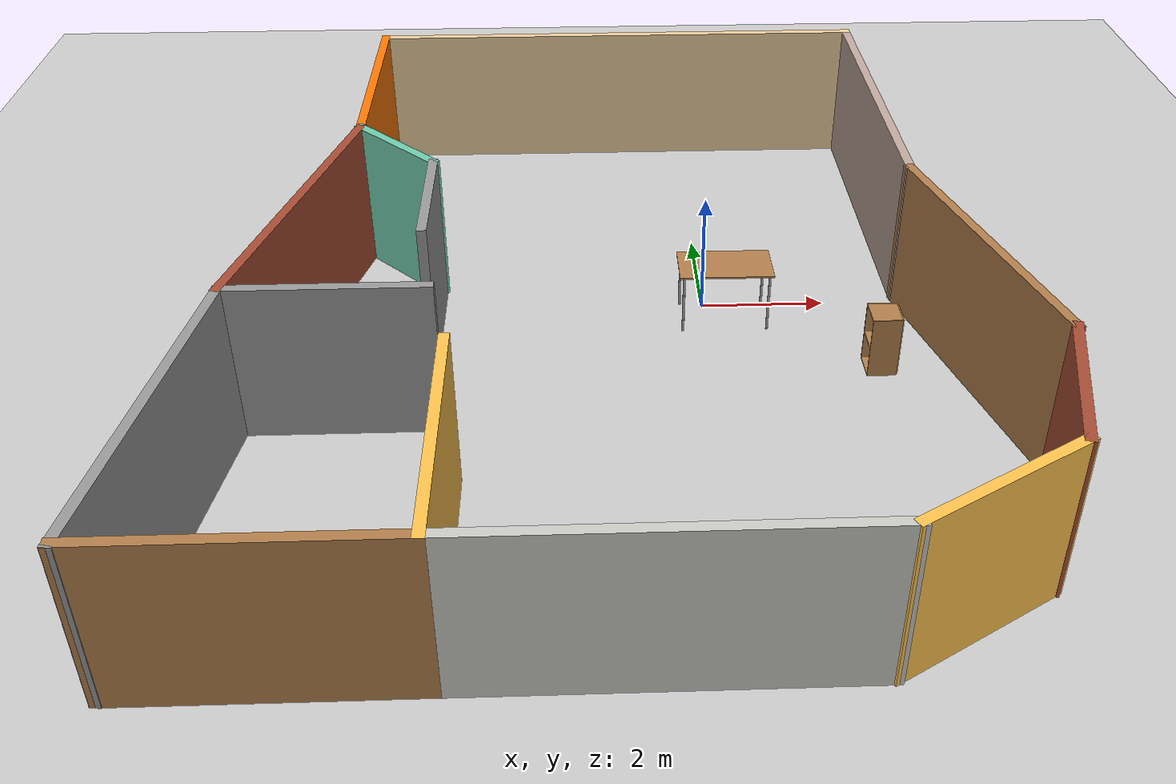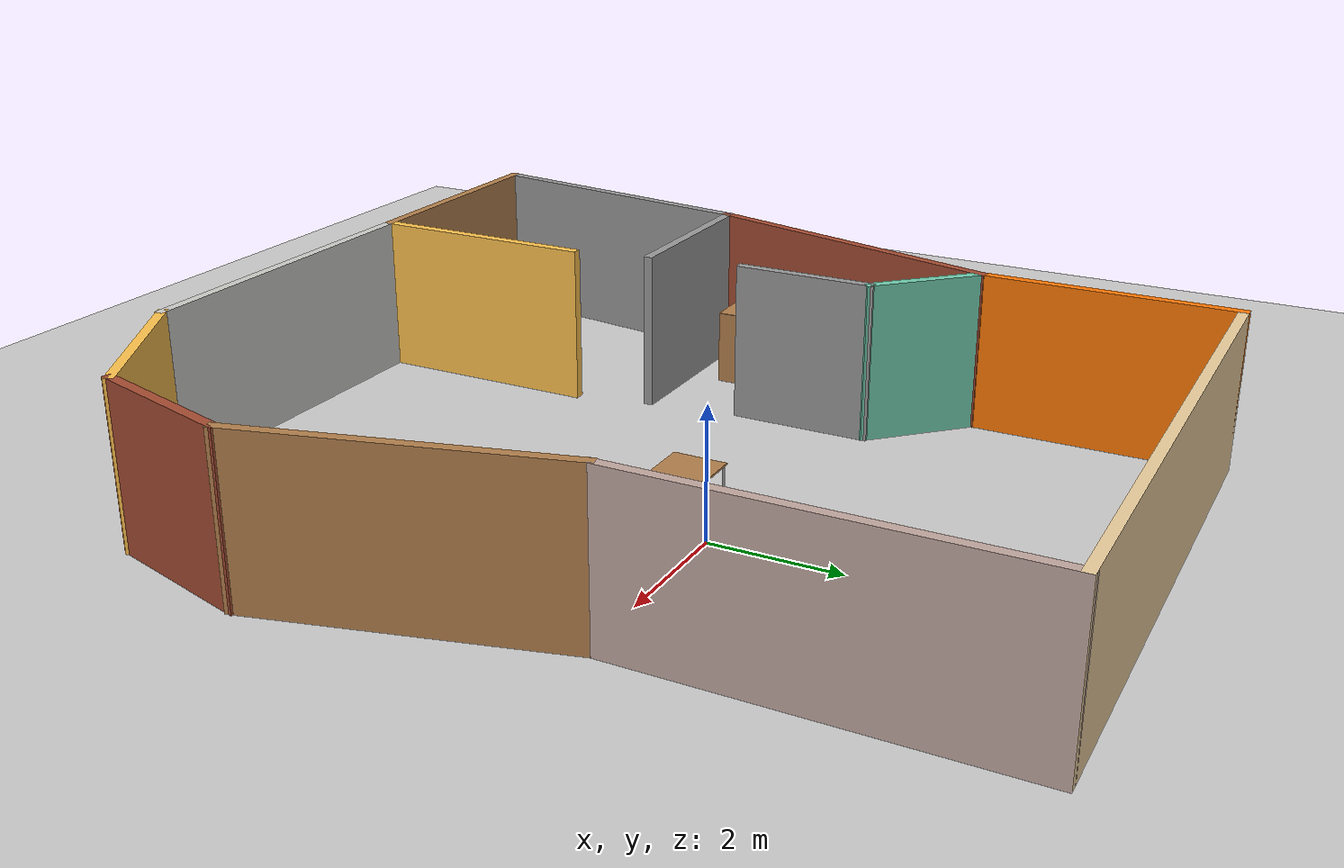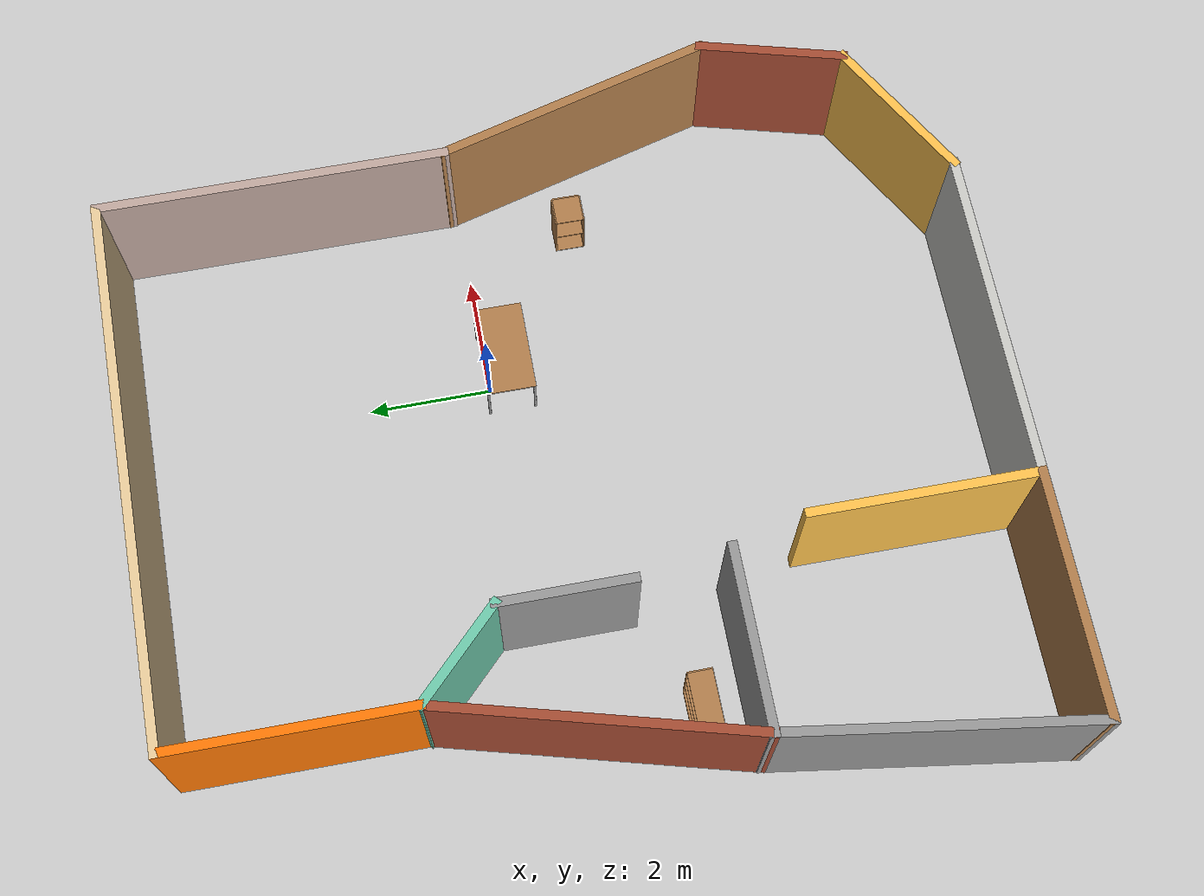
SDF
<sdf version="1.6">
 <world name="default">
  <plugin name="welcom" filename="libwelcome.so"/>
  <light name="sun" type="directional">
   <pose>0 0 10 0 -0 0</pose>
   <diffuse>0.8 0.8 0.8 1</diffuse>
   <specular>0.2 0.2 0.2 1</specular>
   <attenuation>
    <range>1000</range>
    <constant>0.9</constant>
    <linear>0.01</linear>
    <quadratic>0.001</quadratic>
   </attenuation>
   <direction>-0.5 0.1 -0.9</direction>
   <spot><inner_angle>0</inner_angle><outer_angle>0</outer_angle><falloff>0</falloff></spot>
  </light>
  <model name="ground_plane">
   <static>1</static>
   <link name="link">
    <collision name="collision">
     <geometry><plane><normal>0 0 1</normal><size>100 100</size></plane></geometry>
     <surface>
      <contact><collide_bitmask>65535</collide_bitmask></contact>
      <friction><ode><mu>100</mu><mu2>50</mu2></ode></friction>
     </surface>
    </collision>
    <visual name="visual">
     <cast_shadows>0</cast_shadows>
     <geometry><plane><normal>0 0 1</normal><size>100 100</size></plane></geometry>
     <material>
      <script><uri>file://media/materials/scripts/gazebo.material</uri><name>Gazebo/Grey</name></script>
     </material>
    </visual>
   </link>
  </model>
  <gravity>0 0 -9.8</gravity>
  <magnetic_field>6e-06 2.3e-05 -4.2e-05</magnetic_field>
  <atmosphere type="adiabatic"/>
  <physics name="default_physics" default="0" type="ode">
   <max_step_size>0.001</max_step_size>
   <real_time_factor>1</real_time_factor>
   <real_time_update_rate>1000</real_time_update_rate>
  </physics>
  <scene><ambient>0.4 0.4 0.4 1</ambient><background>0.7 0.7 0.7 1</background><shadows>1</shadows></scene>
  <spherical_coordinates>
   <surface_model>EARTH_WGS84</surface_model>
   <latitude_deg>0</latitude_deg>
   <longitude_deg>0</longitude_deg>
   <elevation>0</elevation>
   <heading_deg>0</heading_deg>
  </spherical_coordinates>
  <model name="bookshelf">
   <static>1</static>
   <link name="link">
    <inertial><mass>1</mass></inertial>
    <collision name="back">
     <pose>0 0.005 0.6 0 -0 0</pose>
     <geometry><box><size>0.9 0.01 1.2</size></box></geometry>
    </collision>
    <visual name="visual1">
     <pose>0 0.005 0.6 0 -0 0</pose>
     <geometry><box><size>0.9 0.01 1.2</size></box></geometry>
     <material>
      <script><uri>file://media/materials/scripts/gazebo.material</uri><name>Gazebo/Wood</name></script>
     </material>
    </visual>
    <collision name="left_side">
     <pose>0.45 -0.195 0.6 0 -0 0</pose>
     <geometry><box><size>0.02 0.4 1.2</size></box></geometry>
    </collision>
    <visual name="visual2">
     <pose>0.45 -0.195 0.6 0 -0 0</pose>
     <geometry><box><size>0.02 0.4 1.2</size></box></geometry>
     <material>
      <script><uri>file://media/materials/scripts/gazebo.material</uri><name>Gazebo/Wood</name></script>
     </material>
    </visual>
    <collision name="right_side">
     <pose>-0.45 -0.195 0.6 0 -0 0</pose>
     <geometry><box><size>0.02 0.4 1.2</size></box></geometry>
    </collision>
    <visual name="visual3">
     <pose>-0.45 -0.195 0.6 0 -0 0</pose>
     <geometry><box><size>0.02 0.4 1.2</size></box></geometry>
     <material>
      <script><uri>file://media/materials/scripts/gazebo.material</uri><name>Gazebo/Wood</name></script>
     </material>
    </visual>
    <collision name="bottom">
     <pose>0 -0.195 0.03 0 -0 0</pose>
     <geometry><box><size>0.88 0.4 0.06</size></box></geometry>
    </collision>
    <visual name="visual4">
     <pose>0 -0.195 0.03 0 -0 0</pose>
     <geometry><box><size>0.88 0.4 0.06</size></box></geometry>
     <material>
      <script><uri>file://media/materials/scripts/gazebo.material</uri><name>Gazebo/Wood</name></script>
     </material>
    </visual>
    <collision name="top">
     <pose>0 -0.195 1.19 0 -0 0</pose>
     <geometry><box><size>0.88 0.4 0.02</size></box></geometry>
    </collision>
    <visual name="visual5">
     <pose>0 -0.195 1.19 0 -0 0</pose>
     <geometry><box><size>0.88 0.4 0.02</size></box></geometry>
     <material>
      <script><uri>file://media/materials/scripts/gazebo.material</uri><name>Gazebo/Wood</name></script>
     </material>
    </visual>
    <collision name="low_shelf">
     <pose>0 -0.195 0.43 0 -0 0</pose>
     <geometry><box><size>0.88 0.4 0.02</size></box></geometry>
    </collision>
    <visual name="visual6">
     <pose>0 -0.195 0.43 0 -0 0</pose>
     <geometry><box><size>0.88 0.4 0.02</size></box></geometry>
     <material>
      <script><uri>file://media/materials/scripts/gazebo.material</uri><name>Gazebo/Wood</name></script>
     </material>
    </visual>
    <collision name="high_shelf">
     <pose>0 -0.195 0.8 0 -0 0</pose>
     <geometry><box><size>0.88 0.4 0.02</size></box></geometry>
    </collision>
    <visual name="visual7">
     <pose>0 -0.195 0.8 0 -0 0</pose>
     <geometry><box><size>0.88 0.4 0.02</size></box></geometry>
     <material>
      <script><uri>file://media/materials/scripts/gazebo.material</uri><name>Gazebo/Wood</name></script>
     </material>
    </visual>
   </link>
   <pose>-6 -2.525 0 0 0 -3.13503</pose>
  </model>
  <model name="cabinet">
   <static>1</static>
   <link name="cabinet_bottom_plate">
    <inertial>
     <pose>0 0 -1 0 -0 0</pose>
     <inertia><ixx>2.05</ixx><ixy>0</ixy><ixz>0</ixz><iyy>2.05</iyy><iyz>0</iyz><izz>2.05</izz></inertia>
     <mass>25</mass>
    </inertial>
    <collision name="cabinet_bottom_plate_geom">
     <pose>0 0 0.01 0 -0 0</pose>
     <geometry><box><size>0.45 0.45 0.02</size></box></geometry>
    </collision>
    <visual name="cabinet_bottom_plate_geom_visual">
     <pose>0 0 0.01 0 -0 0</pose>
     <geometry><box><size>0.45 0.45 0.02</size></box></geometry>
     <material>
      <script><uri>file://media/materials/scripts/gazebo.material</uri><name>Gazebo/Wood</name></script>
     </material>
    </visual>
    <collision name="cabinet_bottom_plate_geom_cabinet_back_plate">
     <pose>0.235 0 0.51 0 -0 0</pose>
     <geometry><box><size>0.02 0.45 1.02</size></box></geometry>
    </collision>
    <visual name="cabinet_bottom_plate_geom_cabinet_back_plate_visual">
     <pose>0.235 0 0.51 0 -0 0</pose>
     <geometry><box><size>0.02 0.45 1.02</size></box></geometry>
     <material>
      <script><uri>file://media/materials/scripts/gazebo.material</uri><name>Gazebo/Wood</name></script>
     </material>
    </visual>
    <collision name="cabinet_bottom_plate_geom_cabinet_left_plate">
     <pose>0 0.235 0.51 0 -0 0</pose>
     <geometry><box><size>0.45 0.02 1.02</size></box></geometry>
    </collision>
    <visual name="cabinet_bottom_plate_geom_cabinet_left_plate_visual">
     <pose>0 0.235 0.51 0 -0 0</pose>
     <geometry><box><size>0.45 0.02 1.02</size></box></geometry>
     <material>
      <script><uri>file://media/materials/scripts/gazebo.material</uri><name>Gazebo/Wood</name></script>
     </material>
    </visual>
    <collision name="cabinet_bottom_plate_geom_cabinet_middle_plate">
     <pose>0 0 0.51 0 -0 0</pose>
     <geometry><box><size>0.45 0.45 0.02</size></box></geometry>
    </collision>
    <visual name="cabinet_bottom_plate_geom_cabinet_middle_plate_visual">
     <pose>0 0 0.51 0 -0 0</pose>
     <geometry><box><size>0.45 0.45 0.02</size></box></geometry>
     <material>
      <script><uri>file://media/materials/scripts/gazebo.material</uri><name>Gazebo/Wood</name></script>
     </material>
    </visual>
    <collision name="cabinet_bottom_plate_geom_cabinet_right_plate">
     <pose>0 -0.235 0.51 0 -0 0</pose>
     <geometry><box><size>0.45 0.02 1.02</size></box></geometry>
    </collision>
    <visual name="cabinet_bottom_plate_geom_cabinet_right_plate_visual">
     <pose>0 -0.235 0.51 0 -0 0</pose>
     <geometry><box><size>0.45 0.02 1.02</size></box></geometry>
     <material>
      <script><uri>file://media/materials/scripts/gazebo.material</uri><name>Gazebo/Wood</name></script>
     </material>
    </visual>
    <collision name="cabinet_bottom_plate_geom_cabinet_top_plate">
     <pose>0 0 1.01 0 -0 0</pose>
     <geometry><box><size>0.45 0.45 0.02</size></box></geometry>
    </collision>
    <visual name="cabinet_bottom_plate_geom_cabinet_top_plate_visual">
     <pose>0 0 1.01 0 -0 0</pose>
     <geometry><box><size>0.45 0.45 0.02</size></box></geometry>
     <material>
      <script><uri>file://media/materials/scripts/gazebo.material</uri><name>Gazebo/Wood</name></script>
     </material>
    </visual>
   </link>
   <pose>2.59334 -1.78341 0 0 -0 0</pose>
  </model>
  <model name="table">
   <static>1</static>
   <link name="link">
    <collision name="surface">
     <pose>0 0 1 0 -0 0</pose>
     <geometry><box><size>1.5 0.8 0.03</size></box></geometry>
     <surface><friction><ode><mu>0.6</mu><mu2>0.6</mu2></ode></friction></surface>
    </collision>
    <visual name="visual1">
     <pose>0 0 1 0 -0 0</pose>
     <geometry><box><size>1.5 0.8 0.03</size></box></geometry>
     <material>
      <script><uri>file://media/materials/scripts/gazebo.material</uri><name>Gazebo/Wood</name></script>
     </material>
    </visual>
    <collision name="front_left_leg">
     <pose>0.68 0.38 0.5 0 -0 0</pose>
     <geometry><cylinder><radius>0.02</radius><length>1</length></cylinder></geometry>
    </collision>
    <visual name="front_left_leg">
     <pose>0.68 0.38 0.5 0 -0 0</pose>
     <geometry><cylinder><radius>0.02</radius><length>1</length></cylinder></geometry>
     <material>
      <script><uri>file://media/materials/scripts/gazebo.material</uri><name>Gazebo/Grey</name></script>
     </material>
    </visual>
    <collision name="front_right_leg">
     <pose>0.68 -0.38 0.5 0 -0 0</pose>
     <geometry><cylinder><radius>0.02</radius><length>1</length></cylinder></geometry>
    </collision>
    <visual name="front_right_leg">
     <pose>0.68 -0.38 0.5 0 -0 0</pose>
     <geometry><cylinder><radius>0.02</radius><length>1</length></cylinder></geometry>
     <material>
      <script><uri>file://media/materials/scripts/gazebo.material</uri><name>Gazebo/Grey</name></script>
     </material>
    </visual>
    <collision name="back_right_leg">
     <pose>-0.68 -0.38 0.5 0 -0 0</pose>
     <geometry><cylinder><radius>0.02</radius><length>1</length></cylinder></geometry>
    </collision>
    <visual name="back_right_leg">
     <pose>-0.68 -0.38 0.5 0 -0 0</pose>
     <geometry><cylinder><radius>0.02</radius><length>1</length></cylinder></geometry>
     <material>
      <script><uri>file://media/materials/scripts/gazebo.material</uri><name>Gazebo/Grey</name></script>
     </material>
    </visual>
    <collision name="back_left_leg">
     <pose>-0.68 0.38 0.5 0 -0 0</pose>
     <geometry><cylinder><radius>0.02</radius><length>1</length></cylinder></geometry>
    </collision>
    <visual name="back_left_leg">
     <pose>-0.68 0.38 0.5 0 -0 0</pose>
     <geometry><cylinder><radius>0.02</radius><length>1</length></cylinder></geometry>
     <material>
      <script><uri>file://media/materials/scripts/gazebo.material</uri><name>Gazebo/Grey</name></script>
     </material>
    </visual>
   </link>
   <pose>0.309696 -0.317986 0 0 -0 0</pose>
  </model>
  <model name="Untitled_0">
   <pose>-1.61301 -1.10555 0 0 -0 0</pose>
   <link name="Wall_34">
    <collision name="Wall_34_Collision">
     <geometry><box><size>3 0.15 2.5</size></box></geometry>
     <pose>0 0 1.25 0 -0 0</pose>
    </collision>
    <visual name="Wall_34_Visual">
     <pose>0 0 1.25 0 -0 0</pose>
     <geometry><box><size>3 0.15 2.5</size></box></geometry>
     <material>
      <script><uri>file://media/materials/scripts/gazebo.material</uri><name>Gazebo/Grey</name></script>
      <ambient>1 1 1 1</ambient>
     </material>
     <meta><layer>0</layer></meta>
    </visual>
    <pose>-3.90905 -1.9559 0 0 -0 3.14159</pose>
   </link>
   <link name="Wall_35">
    <collision name="Wall_35_Collision">
     <geometry><box><size>5.25 0.15 2.5</size></box></geometry>
     <pose>0 0 1.25 0 -0 0</pose>
    </collision>
    <visual name="Wall_35_Visual">
     <pose>0 0 1.25 0 -0 0</pose>
     <geometry><box><size>5.25 0.15 2.5</size></box></geometry>
     <material>
      <script><uri>file://media/materials/scripts/gazebo.material</uri><name>Gazebo/Bricks</name></script>
      <ambient>1 1 1 1</ambient>
     </material>
     <meta><layer>0</layer></meta>
    </visual>
    <pose>-4.67406 0.507207 0 0 -0 1.309</pose>
   </link>
   <link name="Wall_36">
    <collision name="Wall_36_Collision">
     <geometry><box><size>4 0.15 2.5</size></box></geometry>
     <pose>0 0 1.25 0 -0 0</pose>
    </collision>
    <visual name="Wall_36_Visual">
     <pose>0 0 1.25 0 -0 0</pose>
     <geometry><box><size>4 0.15 2.5</size></box></geometry>
     <material>
      <script><uri>file://media/materials/scripts/gazebo.material</uri><name>Gazebo/Grey</name></script>
      <ambient>0.996078 0.47451 0.0196078 1</ambient>
     </material>
     <meta><layer>0</layer></meta>
    </visual>
    <pose>-4.01407 4.89532 0 0 -0 1.5708</pose>
   </link>
   <link name="Wall_37">
    <collision name="Wall_37_Collision">
     <geometry><box><size>9 0.15 2.5</size></box></geometry>
     <pose>0 0 1.25 0 -0 0</pose>
    </collision>
    <visual name="Wall_37_Visual">
     <pose>0 0 1.25 0 -0 0</pose>
     <geometry><box><size>9 0.15 2.5</size></box></geometry>
     <material>
      <script><uri>file://media/materials/scripts/gazebo.material</uri><name>Gazebo/Grey</name></script>
      <ambient>0.921569 0.807843 0.615686 1</ambient>
     </material>
     <meta><layer>0</layer></meta>
    </visual>
    <pose>0.41093 6.82032 0 0 -0 0</pose>
   </link>
   <link name="Wall_38">
    <collision name="Wall_38_Collision">
     <geometry><box><size>5.75 0.15 2.5</size></box></geometry>
     <pose>0 0 1.25 0 -0 0</pose>
    </collision>
    <visual name="Wall_38_Visual">
     <pose>0 0 1.25 0 -0 0</pose>
     <geometry><box><size>5.75 0.15 2.5</size></box></geometry>
     <material>
      <script><uri>file://media/materials/scripts/gazebo.material</uri><name>Gazebo/Grey</name></script>
      <ambient>0.760784 0.662745 0.627451 1</ambient>
     </material>
     <meta><layer>0</layer></meta>
    </visual>
    <pose>4.83593 4.02032 0 0 0 -1.5708</pose>
   </link>
   <link name="Wall_39">
    <collision name="Wall_39_Collision">
     <geometry><box><size>4.75 0.15 2.5</size></box></geometry>
     <pose>0 0 1.25 0 -0 0</pose>
    </collision>
    <visual name="Wall_39_Visual">
     <pose>0 0 1.25 0 -0 0</pose>
     <geometry><box><size>4.75 0.15 2.5</size></box></geometry>
     <material>
      <script><uri>file://media/materials/scripts/gazebo.material</uri><name>Gazebo/Wood</name></script>
      <ambient>1 1 1 1</ambient>
     </material>
     <meta><layer>0</layer></meta>
    </visual>
    <pose>5.43121 -1.00131 0 0 0 -1.309</pose>
   </link>
   <link name="Wall_40">
    <collision name="Wall_40_Collision">
     <geometry><box><size>2.5 0.15 2.5</size></box></geometry>
     <pose>0 0 1.25 0 -0 0</pose>
    </collision>
    <visual name="Wall_40_Visual">
     <pose>0 0 1.25 0 -0 0</pose>
     <geometry><box><size>2.5 0.15 2.5</size></box></geometry>
     <material>
      <script><uri>file://media/materials/scripts/gazebo.material</uri><name>Gazebo/Bricks</name></script>
      <ambient>1 1 1 1</ambient>
     </material>
     <meta><layer>0</layer></meta>
    </visual>
    <pose>5.72239 -4.3579 0 0 0 -1.8326</pose>
   </link>
   <link name="Wall_41">
    <collision name="Wall_41_Collision">
     <geometry><box><size>2.75 0.15 2.5</size></box></geometry>
     <pose>0 0 1.25 0 -0 0</pose>
    </collision>
    <visual name="Wall_41_Visual">
     <pose>0 0 1.25 0 -0 0</pose>
     <geometry><box><size>2.75 0.15 2.5</size></box></geometry>
     <material>
      <script><uri>file://media/materials/scripts/gazebo.material</uri><name>Gazebo/Grey</name></script>
      <ambient>1 0.764706 0.305882 1</ambient>
     </material>
     <meta><layer>0</layer></meta>
    </visual>
    <pose>4.29244 -6.14287 0 0 0 -2.61799</pose>
   </link>
   <link name="Wall_42">
    <collision name="Wall_42_Collision">
     <geometry><box><size>5.5 0.15 2.5</size></box></geometry>
     <pose>0 0 1.25 0 -0 0</pose>
    </collision>
    <visual name="Wall_42_Visual">
     <pose>0 0 1.25 0 -0 0</pose>
     <geometry><box><size>5.5 0.15 2.5</size></box></geometry>
     <material>
      <script><uri>file://media/materials/scripts/gazebo.material</uri><name>Gazebo/CeilingTiled</name></script>
      <ambient>1 1 1 1</ambient>
     </material>
     <meta><layer>0</layer></meta>
    </visual>
    <pose>0.491607 -6.79287 0 0 -0 3.14159</pose>
   </link>
   <link name="Wall_43">
    <collision name="Wall_43_Collision">
     <geometry><box><size>3.75 0.15 2.5</size></box></geometry>
     <pose>0 0 1.25 0 -0 0</pose>
    </collision>
    <visual name="Wall_43_Visual">
     <pose>0 0 1.25 0 -0 0</pose>
     <geometry><box><size>3.75 0.15 2.5</size></box></geometry>
     <material>
      <script><uri>file://media/materials/scripts/gazebo.material</uri><name>Gazebo/Grey</name></script>
      <ambient>1 0.764706 0.305882 1</ambient>
     </material>
     <meta><layer>0</layer></meta>
    </visual>
    <pose>-2.18339 -4.99287 0 0 -0 1.5708</pose>
   </link>
   <link name="Wall_45">
    <collision name="Wall_45_Collision">
     <geometry><box><size>4 0.15 2.5</size></box></geometry>
     <pose>0 0 1.25 0 -0 0</pose>
    </collision>
    <visual name="Wall_45_Visual">
     <pose>0 0 1.25 0 -0 0</pose>
     <geometry><box><size>4 0.15 2.5</size></box></geometry>
     <material>
      <script><uri>file://media/materials/scripts/gazebo.material</uri><name>Gazebo/Wood</name></script>
      <ambient>1 1 1 1</ambient>
     </material>
     <meta><layer>0</layer></meta>
    </visual>
    <pose>-4.10839 -6.79287 0 0 -0 3.14159</pose>
   </link>
   <link name="Wall_46">
    <collision name="Wall_46_Collision">
     <geometry><box><size>5.03726 0.15 2.5</size></box></geometry>
     <pose>0 0 1.25 0 -0 0</pose>
    </collision>
    <visual name="Wall_46_Visual">
     <pose>0 0 1.25 0 -0 0</pose>
     <geometry><box><size>5.03726 0.15 2.5</size></box></geometry>
     <material>
      <script><uri>file://media/materials/scripts/gazebo.material</uri><name>Gazebo/Grey</name></script>
      <ambient>1 1 1 1</ambient>
     </material>
     <meta><layer>0</layer></meta>
    </visual>
    <pose>-5.68372 -4.37439 0 0 -0 1.42721</pose>
   </link>
   <link name="Wall_48">
    <collision name="Wall_48_Collision">
     <geometry><box><size>2 0.15 2.5</size></box></geometry>
     <pose>0 0 1.25 0 -0 0</pose>
    </collision>
    <visual name="Wall_48_Visual">
     <pose>0 0 1.25 0 -0 0</pose>
     <geometry><box><size>2 0.15 2.5</size></box></geometry>
     <material>
      <script><uri>file://media/materials/scripts/gazebo.material</uri><name>Gazebo/Grey</name></script>
      <ambient>0.435294 0.796078 0.67451 1</ambient>
     </material>
     <meta><layer>0</layer></meta>
    </visual>
    <pose>-3.36 2.31624 0 0 0 -0.785398</pose>
   </link>
   <link name="Wall_49">
    <collision name="Wall_49_Collision">
     <geometry><box><size>2.25 0.15 2.5</size></box></geometry>
     <pose>0 0 1.25 0 -0 0</pose>
    </collision>
    <visual name="Wall_49_Visual">
     <pose>0 0 1.25 0 -0 0</pose>
     <geometry><box><size>2.25 0.15 2.5</size></box></geometry>
     <material>
      <script><uri>file://media/materials/scripts/gazebo.material</uri><name>Gazebo/Grey</name></script>
      <ambient>1 1 1 1</ambient>
     </material>
     <meta><layer>0</layer></meta>
    </visual>
    <pose>-2.70592 0.61217 0 0 0 -1.5708</pose>
   </link>
   <static>1</static>
  </model>
 </world>
</sdf>
